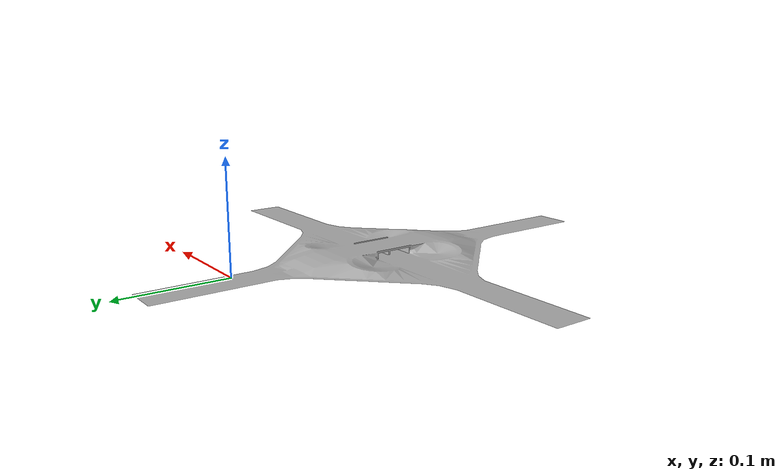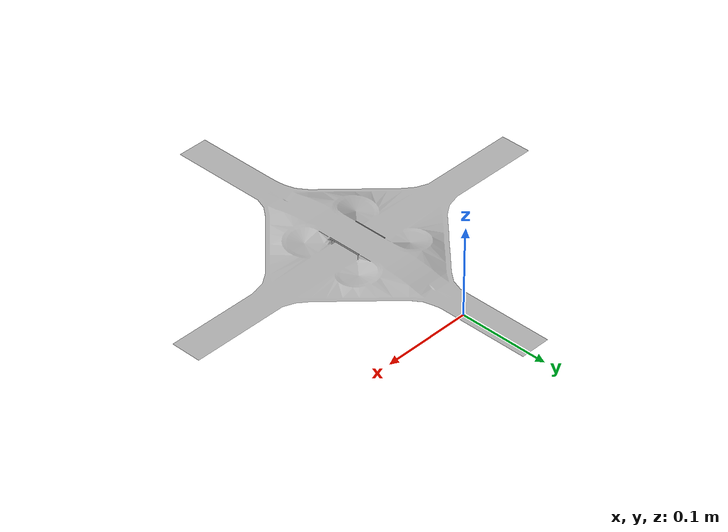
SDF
<?xml version="1.0" ?>
<sdf version='1.6'>
  <world name='default'>

    <!-- Camera & GUI -->
    <gui fullscreen='0'>
      <plugin name='keyboard' filename='libKeyboardGUIPlugin.so'/>
      <camera name="user_camera">
        <pose frame=''>10 0 10 0 0 0</pose>
        <view_controller>orbit</view_controller>
        <projection_type>perspective</projection_type>
      </camera>
    </gui>

    <!-- Lighting -->
    <light name='sun' type='directional'>
      <cast_shadows>0</cast_shadows>
      <pose>0 0 10 0 0 0</pose>
      <diffuse>1 1 1 1</diffuse>
      <specular>0 0 0 1</specular>
      <attenuation>
        <range>1000</range>
        <constant>1</constant>
        <linear>0</linear>
        <quadratic>0</quadratic>
      </attenuation>
      <direction>-1 0 -1</direction>
    </light>

    <!-- Scene: No sky, black background -->
    <scene>
      <ambient>0.6 0.6 0.6 1</ambient>
      <background>0 0 0 1</background>
      <shadows>0</shadows>
    </scene>

    <!-- Physics -->
    <physics name='default_physics' default='0' type='ode'>
      <max_step_size>0.001</max_step_size>
      <real_time_factor>1</real_time_factor>
      <real_time_update_rate>1000</real_time_update_rate>
    </physics>

    <gravity>0 0 -9.8</gravity>
    <audio><device>default</device></audio>
    <wind/>

    <!-- Cloverleaf Model at Origin with Half Scale -->
    <model name='cloverleaf_interchange'>
      <static>1</static>
      <pose frame=''>0 0 0 0 0 0</pose>
      <link name='link'>
        <visual name='visual'>
          <geometry>
            <mesh>
              <uri>model://cloverleaf_interchange/meshes/cloverleaf.obj</uri>
              <scale>0.0127 0.0127 0.0127</scale>
            </mesh>
          </geometry>
        </visual>
        <collision name='collision'>
          <geometry>
            <mesh>
              <uri>model://cloverleaf_interchange/meshes/cloverleaf.obj</uri>
              <scale>0.0127 0.0127 0.0127</scale>
            </mesh>
          </geometry>
        </collision>
      </link>
    </model>

  </world>
</sdf>
